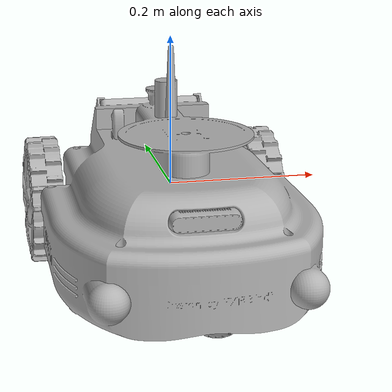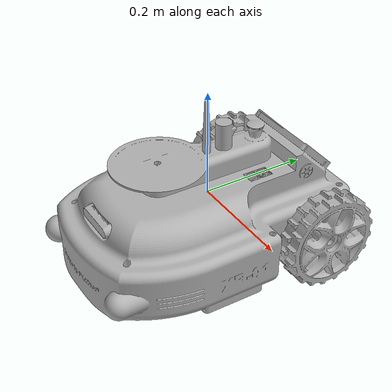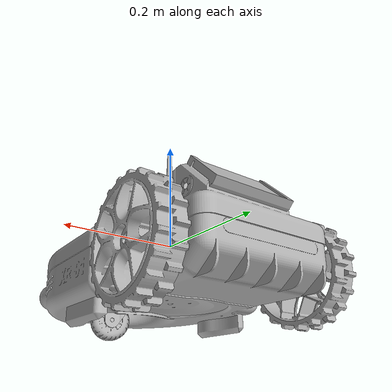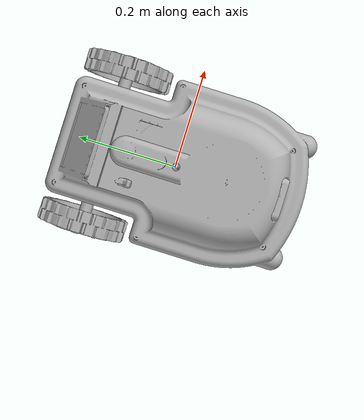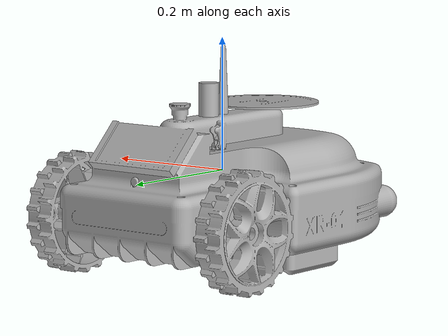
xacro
<?xml version="1.0" ?>
<robot name="mower_robot" xmlns:xacro="http://www.ros.org/wiki/xacro">

<xacro:include filename="$(find mower_robot_description)/urdf/materials.xacro" />
<xacro:include filename="$(find mower_robot_description)/urdf/mower_robot.trans" />
<xacro:include filename="$(find mower_robot_description)/urdf/mower_robot.gazebo" />
<xacro:include filename="$(find mower_robot_description)/urdf/ros2_control.xacro" />

<link name="base_link">
  <inertial>
    <origin xyz="-0.00013914774572061804 0.0011217762762978716 -0.036198325107881256" rpy="0 0 0"/>
    <mass value="16.741403336693484"/>
    <inertia ixx="0.443332" iyy="0.230582" izz="0.513887" ixy="0.000132" iyz="-0.01769" ixz="0.000636"/>
  </inertial>
  <visual>
    <origin xyz="0 0 0" rpy="0 0 0"/>
    <geometry>
      <mesh filename="package://mower_robot_description/meshes/base_link.stl" scale="0.001 0.001 0.001"/>
    </geometry>
    <material name="silver"/>
  </visual>
  <collision>
    <origin xyz="0 0 0" rpy="0 0 0"/>
    <geometry>
      <mesh filename="package://mower_robot_description/meshes/base_link.stl" scale="0.001 0.001 0.001"/>
    </geometry>
  </collision>
</link>

<link name="caster_wheel_link_1">
  <inertial>
    <origin xyz="-0.01642637225083642 -0.001555255512678766 7.234572718672894e-09" rpy="0 0 0"/>
    <mass value="0.9916636746164442"/>
    <inertia ixx="0.000636" iyy="0.000397" izz="0.000395" ixy="2.3e-05" iyz="0.0" ixz="-0.0"/>
  </inertial>
  <visual>
    <origin xyz="-0.01938 0.190279 0.1125" rpy="0 0 0"/>
    <geometry>
      <mesh filename="package://mower_robot_description/meshes/caster_wheel_link_1.stl" scale="0.001 0.001 0.001"/>
    </geometry>
    <material name="silver"/>
  </visual>
  <collision>
    <origin xyz="-0.01938 0.190279 0.1125" rpy="0 0 0"/>
    <geometry>
      <mesh filename="package://mower_robot_description/meshes/caster_wheel_link_1.stl" scale="0.001 0.001 0.001"/>
    </geometry>
  </collision>
</link>

<link name="caster_yaw_link_1">
  <inertial>
    <origin xyz="0.0008429711230167588 -0.008903626053709507 -0.02351181303282078" rpy="0 0 0"/>
    <mass value="0.20137991035928512"/>
    <inertia ixx="0.000157" iyy="0.000149" izz="0.000104" ixy="1e-06" iyz="-2.9e-05" ixz="3e-06"/>
  </inertial>
  <visual>
    <origin xyz="0.0 0.1665 0.043" rpy="0 0 0"/>
    <geometry>
      <mesh filename="package://mower_robot_description/meshes/caster_yaw_link_1.stl" scale="0.001 0.001 0.001"/>
    </geometry>
    <material name="silver"/>
  </visual>
  <collision>
    <origin xyz="0.0 0.1665 0.043" rpy="0 0 0"/>
    <geometry>
      <mesh filename="package://mower_robot_description/meshes/caster_yaw_link_1.stl" scale="0.001 0.001 0.001"/>
    </geometry>
  </collision>
</link>

<link name="left_wheel_link_1">
  <inertial>
    <origin xyz="0.013009877881536708 -7.730436743350055e-05 3.385486335716337e-14" rpy="0 0 0"/>
    <mass value="0.09761950715705968"/>
    <inertia ixx="9e-06" iyy="1e-05" izz="1e-05" ixy="-0.0" iyz="-0.0" ixz="0.0"/>
  </inertial>
  <visual>
    <origin xyz="-0.12 -0.15 0.06" rpy="0 0 0"/>
    <geometry>
      <mesh filename="package://mower_robot_description/meshes/left_wheel_link_1.stl" scale="0.001 0.001 0.001"/>
    </geometry>
    <material name="silver"/>
  </visual>
  <collision>
    <origin xyz="-0.12 -0.15 0.06" rpy="0 0 0"/>
    <geometry>
      <mesh filename="package://mower_robot_description/meshes/left_wheel_link_1.stl" scale="0.001 0.001 0.001"/>
    </geometry>
  </collision>
</link>

<link name="left_wheel_link_2">
  <inertial>
    <origin xyz="-0.013009877881540177 7.730436742720004e-05 3.384792446325946e-14" rpy="0 0 0"/>
    <mass value="0.09761950715705968"/>
    <inertia ixx="9e-06" iyy="1e-05" izz="1e-05" ixy="-0.0" iyz="0.0" ixz="-0.0"/>
  </inertial>
  <visual>
    <origin xyz="0.12 -0.15 0.06" rpy="0 0 0"/>
    <geometry>
      <mesh filename="package://mower_robot_description/meshes/left_wheel_link_2.stl" scale="0.001 0.001 0.001"/>
    </geometry>
    <material name="silver"/>
  </visual>
  <collision>
    <origin xyz="0.12 -0.15 0.06" rpy="0 0 0"/>
    <geometry>
      <mesh filename="package://mower_robot_description/meshes/left_wheel_link_2.stl" scale="0.001 0.001 0.001"/>
    </geometry>
  </collision>
</link>

<link name="imu_link_1">
  <inertial>
    <origin xyz="-0.0002455783523350139 6.106226635438361e-16 0.005313208484620982" rpy="0 0 0"/>
    <mass value="0.20097338891959368"/>
    <inertia ixx="3.8e-05" iyy="4.5e-05" izz="7.8e-05" ixy="-0.0" iyz="0.0" ixz="0.0"/>
  </inertial>
  <visual>
    <origin xyz="0.000633 -0.194 0.07" rpy="0 0 0"/>
    <geometry>
      <mesh filename="package://mower_robot_description/meshes/imu_link_1.stl" scale="0.001 0.001 0.001"/>
    </geometry>
    <material name="silver"/>
  </visual>
  <collision>
    <origin xyz="0.000633 -0.194 0.07" rpy="0 0 0"/>
    <geometry>
      <mesh filename="package://mower_robot_description/meshes/imu_link_1.stl" scale="0.001 0.001 0.001"/>
    </geometry>
  </collision>
</link>

<link name="back_camera_link_1">
  <inertial>
    <origin xyz="0.00017412726109305226 -0.011783586388691758 0.14967906351799767" rpy="0 0 0"/>
    <mass value="0.04544262598535241"/>
    <inertia ixx="4e-06" iyy="5e-06" izz="4e-06" ixy="0.0" iyz="-0.0" ixz="0.0"/>
  </inertial>
  <visual>
    <origin xyz="0.0 -0.2024 0.145" rpy="0 0 0"/>
    <geometry>
      <mesh filename="package://mower_robot_description/meshes/back_camera_link_1.stl" scale="0.001 0.001 0.001"/>
    </geometry>
    <material name="silver"/>
  </visual>
  <collision>
    <origin xyz="0.0 -0.2024 0.145" rpy="0 0 0"/>
    <geometry>
      <mesh filename="package://mower_robot_description/meshes/back_camera_link_1.stl" scale="0.001 0.001 0.001"/>
    </geometry>
  </collision>
</link>

<link name="depth_camera_link_1">
  <inertial>
    <origin xyz="-0.0210918599383831 -0.01165788728777628 -2.3486854453198813e-05" rpy="0 0 0"/>
    <mass value="0.07200108621043574"/>
    <inertia ixx="7e-06" iyy="4.6e-05" izz="4.7e-05" ixy="-0.0" iyz="-0.0" ixz="0.0"/>
  </inertial>
  <visual>
    <origin xyz="-0.0225 0.199445 -0.0175" rpy="0 0 0"/>
    <geometry>
      <mesh filename="package://mower_robot_description/meshes/depth_camera_link_1.stl" scale="0.001 0.001 0.001"/>
    </geometry>
    <material name="silver"/>
  </visual>
  <collision>
    <origin xyz="-0.0225 0.199445 -0.0175" rpy="0 0 0"/>
    <geometry>
      <mesh filename="package://mower_robot_description/meshes/depth_camera_link_1.stl" scale="0.001 0.001 0.001"/>
    </geometry>
  </collision>
</link>

<joint name="caster_wheel_joint" type="continuous">
  <origin xyz="0.01938 -0.023779 -0.0695" rpy="0 0 0"/>
  <parent link="caster_yaw_link_1"/>
  <child link="caster_wheel_link_1"/>
  <axis xyz="0.995548 0.094256 0.0"/>
</joint>

<joint name="caster_yaw_joint" type="continuous">
  <origin xyz="0.0 -0.1665 -0.043" rpy="0 0 0"/>
  <parent link="base_link"/>
  <child link="caster_yaw_link_1"/>
  <axis xyz="-0.0 -0.0 1.0"/>
</joint>

<joint name="left_wheel_joint" type="continuous">
  <origin xyz="0.12 0.15 -0.06" rpy="0 0 0"/>
  <parent link="base_link"/>
  <child link="left_wheel_link_1"/>
  <axis xyz="-1.0 0.0 0.0"/>
</joint>

<joint name="right_wheel_joint" type="continuous">
  <origin xyz="-0.12 0.15 -0.06" rpy="0 0 0"/>
  <parent link="base_link"/>
  <child link="left_wheel_link_2"/>
  <axis xyz="1.0 -0.0 0.0"/>
</joint>

<joint name="back_camera_joint" type="fixed">
  <origin xyz="-0.000633 0.194 -0.07" rpy="0 0 0"/>
  <parent link="base_link"/>
  <child link="imu_link_1"/>
</joint>

<joint name="imu_joint" type="fixed">
  <origin xyz="0.0 0.2024 -0.145" rpy="0 0 0"/>
  <parent link="base_link"/>
  <child link="back_camera_link_1"/>
</joint>

<joint name="depth_camera_joint" type="fixed">
  <origin xyz="0.0225 -0.199445 0.0175" rpy="0 0 0"/>
  <parent link="base_link"/>
  <child link="depth_camera_link_1"/>
</joint>

</robot>

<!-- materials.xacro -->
<robot name="mower_robot" xmlns:xacro="http://www.ros.org/wiki/xacro" >

<material name="silver">
  <color rgba="0.700 0.700 0.700 1.000"/>
</material>

</robot>

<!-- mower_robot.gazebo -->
<robot name="mower_robot" xmlns:xacro="http://www.ros.org/wiki/xacro" >

<xacro:property name="body_color" value="Gazebo/Silver" />

<gazebo>
  <plugin name="control" filename="libgazebo_ros_control.so"/>
</gazebo>
<gazebo reference="base_link">
  <material>${body_color}</material>
  <mu1>0.2</mu1>
  <mu2>0.2</mu2>
  <self_collide>true</self_collide>
  <gravity>true</gravity>
</gazebo>

<gazebo reference="caster_wheel_link_1">
  <material>${body_color}</material>
  <mu1>0.2</mu1>
  <mu2>0.2</mu2>
  <self_collide>true</self_collide>
</gazebo>

<gazebo reference="caster_yaw_link_1">
  <material>${body_color}</material>
  <mu1>0.2</mu1>
  <mu2>0.2</mu2>
  <self_collide>true</self_collide>
</gazebo>

<gazebo reference="left_wheel_link_1">
  <material>${body_color}</material>
  <mu1>0.2</mu1>
  <mu2>0.2</mu2>
  <self_collide>true</self_collide>
</gazebo>

<gazebo reference="left_wheel_link_2">
  <material>${body_color}</material>
  <mu1>0.2</mu1>
  <mu2>0.2</mu2>
  <self_collide>true</self_collide>
</gazebo>

<gazebo reference="imu_link_1">
  <material>${body_color}</material>
  <mu1>0.2</mu1>
  <mu2>0.2</mu2>
  <self_collide>true</self_collide>
</gazebo>

<gazebo reference="back_camera_link_1">
  <material>${body_color}</material>
  <mu1>0.2</mu1>
  <mu2>0.2</mu2>
  <self_collide>true</self_collide>
</gazebo>

<gazebo reference="depth_camera_link_1">
  <material>${body_color}</material>
  <mu1>0.2</mu1>
  <mu2>0.2</mu2>
  <self_collide>true</self_collide>
</gazebo>

</robot>
